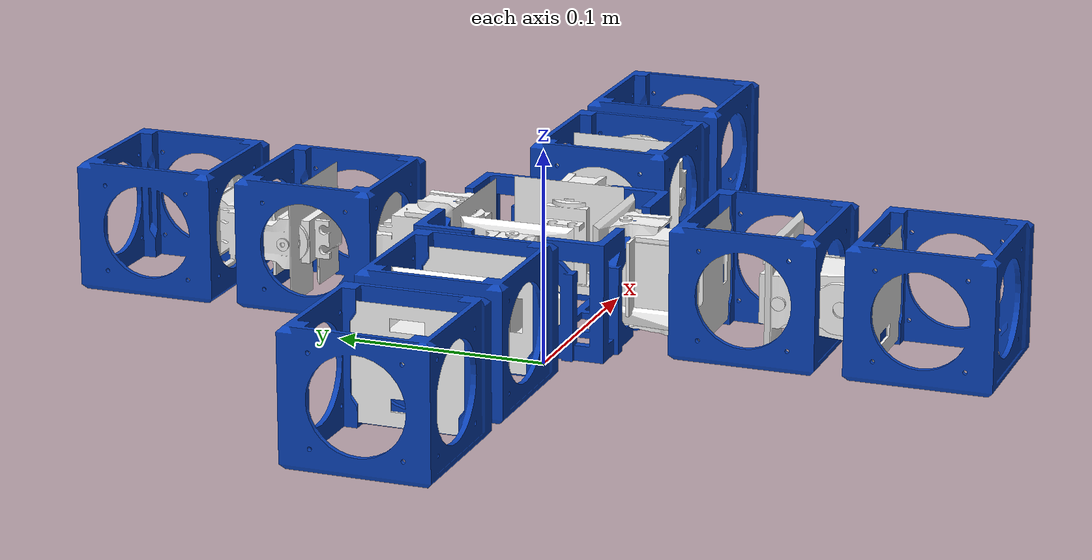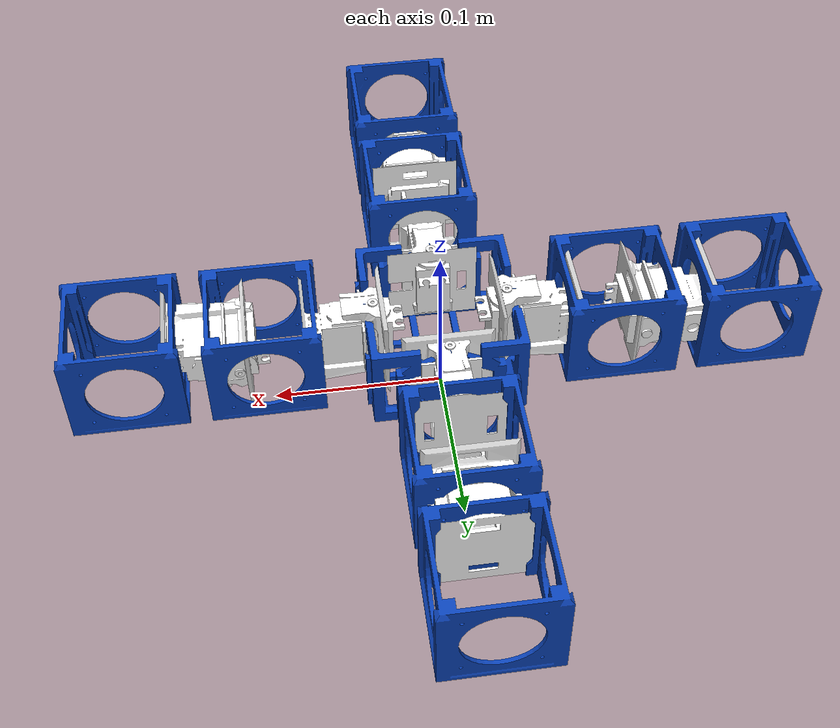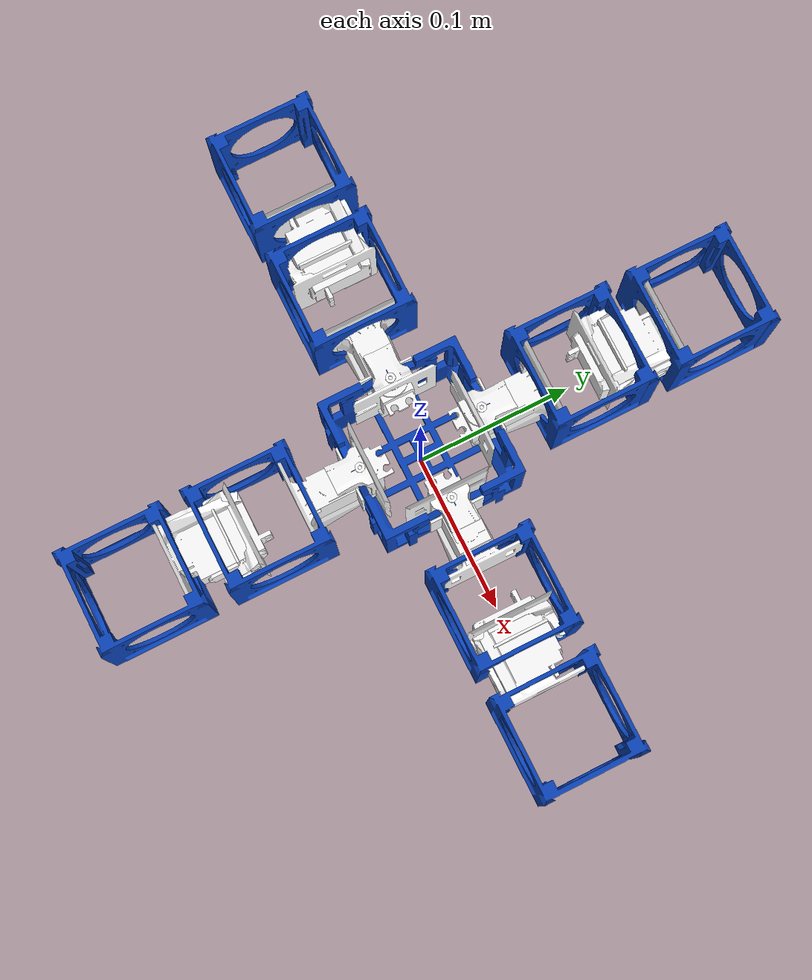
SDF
<sdf version="1.5">
 <model name="spider">
  <pose>0.000000e+00 0.000000e+00 5.000000e-02 0.000000e+00 -0.000000e+00 0.000000e+00</pose>
  <link name="link_component_Core__box">
   <visual name="component_Core__box_visual">
    <material>
     <ambient>0.04 0.26 0.72 1.0</ambient>
     <diffuse>0.04 0.26 0.72 1.0</diffuse>
     <specular>0.1 0.1 0.1 1.0</specular>
    </material>
    <geometry><mesh><uri>model://rg_robot/meshes/CoreComponent.dae</uri></mesh></geometry>
   </visual>
   <collision name="component_Core__box_collision">
    <surface>
     <contact><ode><kd>3.333333e+06</kd><kp>9.000000e+04</kp></ode></contact>
     <friction>
      <ode><mu>1.000000e+00</mu><mu2>1.000000e+00</mu2><slip1>1.000000e-02</slip1><slip2>1.000000e-02</slip2></ode>
      <bullet><friction>1.000000e+00</friction><friction2>1.000000e+00</friction2></bullet>
     </friction>
    </surface>
    <geometry><box><size>9.000000e-02 9.000000e-02 4.500000e-02</size></box></geometry>
   </collision>
   <sensor name="Core-imu_sensor" type="imu">
    <update_rate>8.000000e+00</update_rate>
    <always_on>1</always_on>
   </sensor>
   <visual name="component_Leg00Joint__root_visual">
    <pose>1.665335e-19 -4.575000e-02 4.163336e-20 1.570796e+00 -5.551115e-17 -1.570796e+00</pose>
    <material>
     <ambient>0.98 0.98 0.98 1.0</ambient>
     <diffuse>0.98 0.98 0.98 1.0</diffuse>
     <specular>0.1 0.1 0.1 1.0</specular>
    </material>
    <geometry><box><size>1.500000e-03 3.400000e-02 3.400000e-02</size></box></geometry>
   </visual>
   <collision name="component_Leg00Joint__root_collision">
    <pose>1.665335e-19 -4.575000e-02 4.163336e-20 1.570796e+00 -5.551115e-17 -1.570796e+00</pose>
    <surface>
     <contact><ode><kd>3.333333e+06</kd><kp>9.000000e+04</kp></ode></contact>
     <friction>
      <ode><mu>1.000000e+00</mu><mu2>1.000000e+00</mu2><slip1>1.000000e-02</slip1><slip2>1.000000e-02</slip2></ode>
      <bullet><friction>1.000000e+00</friction><friction2>1.000000e+00</friction2></bullet>
     </friction>
    </surface>
    <geometry><box><size>1.500000e-03 3.400000e-02 3.400000e-02</size></box></geometry>
   </collision>
   <visual name="component_Leg00Joint__frame_frame_visual">
    <pose>2.353673e-18 -5.560000e-02 5.884182e-19 1.570796e+00 -5.551115e-17 -1.570796e+00</pose>
    <material>
     <ambient>0.98 0.98 0.98 1.0</ambient>
     <diffuse>0.98 0.98 0.98 1.0</diffuse>
     <specular>0.1 0.1 0.1 1.0</specular>
    </material>
    <geometry><mesh><uri>model://rg_robot/meshes/ActiveHinge_Frame.dae</uri></mesh></geometry>
   </visual>
   <collision name="component_Leg00Joint__frame_collision">
    <pose>2.353673e-18 -5.560000e-02 5.884182e-19 1.570796e+00 -5.551115e-17 -1.570796e+00</pose>
    <surface>
     <contact><ode><kd>3.333333e+06</kd><kp>9.000000e+04</kp></ode></contact>
     <friction>
      <ode><mu>1.000000e+00</mu><mu2>1.000000e+00</mu2><slip1>1.000000e-02</slip1><slip2>1.000000e-02</slip2></ode>
      <bullet><friction>1.000000e+00</friction><friction2>1.000000e+00</friction2></bullet>
     </friction>
    </surface>
    <geometry><box><size>1.800000e-02 3.400000e-02 1.000000e-02</size></box></geometry>
   </collision>
   <visual name="component_Leg10Joint__root_visual">
    <pose>1.665335e-19 4.575000e-02 -4.163336e-20 1.570796e+00 5.551115e-17 1.570796e+00</pose>
    <material>
     <ambient>0.98 0.98 0.98 1.0</ambient>
     <diffuse>0.98 0.98 0.98 1.0</diffuse>
     <specular>0.1 0.1 0.1 1.0</specular>
    </material>
    <geometry><box><size>1.500000e-03 3.400000e-02 3.400000e-02</size></box></geometry>
   </visual>
   <collision name="component_Leg10Joint__root_collision">
    <pose>1.665335e-19 4.575000e-02 -4.163336e-20 1.570796e+00 5.551115e-17 1.570796e+00</pose>
    <surface>
     <contact><ode><kd>3.333333e+06</kd><kp>9.000000e+04</kp></ode></contact>
     <friction>
      <ode><mu>1.000000e+00</mu><mu2>1.000000e+00</mu2><slip1>1.000000e-02</slip1><slip2>1.000000e-02</slip2></ode>
      <bullet><friction>1.000000e+00</friction><friction2>1.000000e+00</friction2></bullet>
     </friction>
    </surface>
    <geometry><box><size>1.500000e-03 3.400000e-02 3.400000e-02</size></box></geometry>
   </collision>
   <visual name="component_Leg10Joint__frame_frame_visual">
    <pose>2.353673e-18 5.560000e-02 -5.884182e-19 1.570796e+00 5.551115e-17 1.570796e+00</pose>
    <material>
     <ambient>0.98 0.98 0.98 1.0</ambient>
     <diffuse>0.98 0.98 0.98 1.0</diffuse>
     <specular>0.1 0.1 0.1 1.0</specular>
    </material>
    <geometry><mesh><uri>model://rg_robot/meshes/ActiveHinge_Frame.dae</uri></mesh></geometry>
   </visual>
   <collision name="component_Leg10Joint__frame_collision">
    <pose>2.353673e-18 5.560000e-02 -5.884182e-19 1.570796e+00 5.551115e-17 1.570796e+00</pose>
    <surface>
     <contact><ode><kd>3.333333e+06</kd><kp>9.000000e+04</kp></ode></contact>
     <friction>
      <ode><mu>1.000000e+00</mu><mu2>1.000000e+00</mu2><slip1>1.000000e-02</slip1><slip2>1.000000e-02</slip2></ode>
      <bullet><friction>1.000000e+00</friction><friction2>1.000000e+00</friction2></bullet>
     </friction>
    </surface>
    <geometry><box><size>1.800000e-02 3.400000e-02 1.000000e-02</size></box></geometry>
   </collision>
   <visual name="component_Leg20Joint__root_visual">
    <pose>4.575000e-02 0.000000e+00 0.000000e+00 1.570796e+00 -0.000000e+00 0.000000e+00</pose>
    <material>
     <ambient>0.98 0.98 0.98 1.0</ambient>
     <diffuse>0.98 0.98 0.98 1.0</diffuse>
     <specular>0.1 0.1 0.1 1.0</specular>
    </material>
    <geometry><box><size>1.500000e-03 3.400000e-02 3.400000e-02</size></box></geometry>
   </visual>
   <collision name="component_Leg20Joint__root_collision">
    <pose>4.575000e-02 0.000000e+00 0.000000e+00 1.570796e+00 -0.000000e+00 0.000000e+00</pose>
    <surface>
     <contact><ode><kd>3.333333e+06</kd><kp>9.000000e+04</kp></ode></contact>
     <friction>
      <ode><mu>1.000000e+00</mu><mu2>1.000000e+00</mu2><slip1>1.000000e-02</slip1><slip2>1.000000e-02</slip2></ode>
      <bullet><friction>1.000000e+00</friction><friction2>1.000000e+00</friction2></bullet>
     </friction>
    </surface>
    <geometry><box><size>1.500000e-03 3.400000e-02 3.400000e-02</size></box></geometry>
   </collision>
   <visual name="component_Leg20Joint__frame_frame_visual">
    <pose>5.560000e-02 0.000000e+00 0.000000e+00 1.570796e+00 -0.000000e+00 0.000000e+00</pose>
    <material>
     <ambient>0.98 0.98 0.98 1.0</ambient>
     <diffuse>0.98 0.98 0.98 1.0</diffuse>
     <specular>0.1 0.1 0.1 1.0</specular>
    </material>
    <geometry><mesh><uri>model://rg_robot/meshes/ActiveHinge_Frame.dae</uri></mesh></geometry>
   </visual>
   <collision name="component_Leg20Joint__frame_collision">
    <pose>5.560000e-02 0.000000e+00 0.000000e+00 1.570796e+00 -0.000000e+00 0.000000e+00</pose>
    <surface>
     <contact><ode><kd>3.333333e+06</kd><kp>9.000000e+04</kp></ode></contact>
     <friction>
      <ode><mu>1.000000e+00</mu><mu2>1.000000e+00</mu2><slip1>1.000000e-02</slip1><slip2>1.000000e-02</slip2></ode>
      <bullet><friction>1.000000e+00</friction><friction2>1.000000e+00</friction2></bullet>
     </friction>
    </surface>
    <geometry><box><size>1.800000e-02 3.400000e-02 1.000000e-02</size></box></geometry>
   </collision>
   <visual name="component_Leg30Joint__root_visual">
    <pose>-4.575000e-02 0.000000e+00 0.000000e+00 1.570796e+00 -0.000000e+00 3.141593e+00</pose>
    <material>
     <ambient>0.98 0.98 0.98 1.0</ambient>
     <diffuse>0.98 0.98 0.98 1.0</diffuse>
     <specular>0.1 0.1 0.1 1.0</specular>
    </material>
    <geometry><box><size>1.500000e-03 3.400000e-02 3.400000e-02</size></box></geometry>
   </visual>
   <collision name="component_Leg30Joint__root_collision">
    <pose>-4.575000e-02 0.000000e+00 0.000000e+00 1.570796e+00 -0.000000e+00 3.141593e+00</pose>
    <surface>
     <contact><ode><kd>3.333333e+06</kd><kp>9.000000e+04</kp></ode></contact>
     <friction>
      <ode><mu>1.000000e+00</mu><mu2>1.000000e+00</mu2><slip1>1.000000e-02</slip1><slip2>1.000000e-02</slip2></ode>
      <bullet><friction>1.000000e+00</friction><friction2>1.000000e+00</friction2></bullet>
     </friction>
    </surface>
    <geometry><box><size>1.500000e-03 3.400000e-02 3.400000e-02</size></box></geometry>
   </collision>
   <visual name="component_Leg30Joint__frame_frame_visual">
    <pose>-5.560000e-02 0.000000e+00 0.000000e+00 1.570796e+00 -0.000000e+00 3.141593e+00</pose>
    <material>
     <ambient>0.98 0.98 0.98 1.0</ambient>
     <diffuse>0.98 0.98 0.98 1.0</diffuse>
     <specular>0.1 0.1 0.1 1.0</specular>
    </material>
    <geometry><mesh><uri>model://rg_robot/meshes/ActiveHinge_Frame.dae</uri></mesh></geometry>
   </visual>
   <collision name="component_Leg30Joint__frame_collision">
    <pose>-5.560000e-02 0.000000e+00 0.000000e+00 1.570796e+00 -0.000000e+00 3.141593e+00</pose>
    <surface>
     <contact><ode><kd>3.333333e+06</kd><kp>9.000000e+04</kp></ode></contact>
     <friction>
      <ode><mu>1.000000e+00</mu><mu2>1.000000e+00</mu2><slip1>1.000000e-02</slip1><slip2>1.000000e-02</slip2></ode>
      <bullet><friction>1.000000e+00</friction><friction2>1.000000e+00</friction2></bullet>
     </friction>
    </surface>
    <geometry><box><size>1.800000e-02 3.400000e-02 1.000000e-02</size></box></geometry>
   </collision>
   <inertial>
    <mass>1.228000e-01</mass>
    <inertia>
     <ixx>1.172555e-04</ixx>
     <ixy>0.000000e+00</ixy>
     <ixz>-1.763242e-38</ixz>
     <iyy>1.172555e-04</iyy>
     <iyz>4.198228e-22</iyz>
     <izz>1.978165e-04</izz>
    </inertia>
   </inertial>
   <self_collide>True</self_collide>
  </link>
  <link name="link_component_Leg00Joint__servo">
   <pose>1.638200e-17 -9.529797e-02 7.873596e-20 0.000000e+00 -0.000000e+00 0.000000e+00</pose>
   <visual name="component_Leg00Joint__servo_servo_visual">
    <pose>-1.108624e-17 2.644797e-02 1.245205e-18 1.570796e+00 -5.551115e-17 -1.570796e+00</pose>
    <material>
     <ambient>0.98 0.98 0.98 1.0</ambient>
     <diffuse>0.98 0.98 0.98 1.0</diffuse>
     <specular>0.1 0.1 0.1 1.0</specular>
    </material>
    <geometry><mesh><uri>model://rg_robot/meshes/ActiveCardanHinge_Servo_Holder.dae</uri></mesh></geometry>
   </visual>
   <collision name="component_Leg00Joint__servo_collision">
    <pose>-1.108624e-17 2.644797e-02 1.245205e-18 1.570796e+00 -5.551115e-17 -1.570796e+00</pose>
    <surface>
     <contact><ode><kd>3.333333e+06</kd><kp>9.000000e+04</kp></ode></contact>
     <friction>
      <ode><mu>1.000000e+00</mu><mu2>1.000000e+00</mu2><slip1>1.000000e-02</slip1><slip2>1.000000e-02</slip2></ode>
      <bullet><friction>1.000000e+00</friction><friction2>1.000000e+00</friction2></bullet>
     </friction>
    </surface>
    <geometry><box><size>2.450000e-02 3.400000e-02 1.000000e-02</size></box></geometry>
   </collision>
   <collision name="component_Leg00Joint__tail_collision">
    <pose>-8.177453e-18 1.334797e-02 1.972401e-18 1.570796e+00 -5.551115e-17 -1.570796e+00</pose>
    <surface>
     <contact><ode><kd>3.333333e+06</kd><kp>9.000000e+04</kp></ode></contact>
     <friction>
      <ode><mu>1.000000e+00</mu><mu2>1.000000e+00</mu2><slip1>1.000000e-02</slip1><slip2>1.000000e-02</slip2></ode>
      <bullet><friction>1.000000e+00</friction><friction2>1.000000e+00</friction2></bullet>
     </friction>
    </surface>
    <geometry><box><size>1.500000e-03 3.400000e-02 3.400000e-02</size></box></geometry>
   </collision>
   <visual name="component_Leg00__box_visual">
    <pose>6.530768e-18 -7.902035e-03 -3.481570e-18 2.220446e-16 -2.835742e-16 -3.141593e+00</pose>
    <material>
     <ambient>0.04 0.26 0.72 1.0</ambient>
     <diffuse>0.04 0.26 0.72 1.0</diffuse>
     <specular>0.1 0.1 0.1 1.0</specular>
    </material>
    <geometry><mesh><uri>model://rg_robot/meshes/FixedBrick.dae</uri></mesh></geometry>
   </visual>
   <collision name="component_Leg00__box_collision">
    <pose>6.530768e-18 -7.902035e-03 -3.481570e-18 2.220446e-16 -2.835742e-16 -3.141593e+00</pose>
    <surface>
     <contact><ode><kd>3.333333e+06</kd><kp>9.000000e+04</kp></ode></contact>
     <friction>
      <ode><mu>1.000000e+00</mu><mu2>1.000000e+00</mu2><slip1>1.000000e-02</slip1><slip2>1.000000e-02</slip2></ode>
      <bullet><friction>1.000000e+00</friction><friction2>1.000000e+00</friction2></bullet>
     </friction>
    </surface>
    <geometry><box><size>-1.000000e+00 1.000000e+00 3.550000e-02</size></box></geometry>
   </collision>
   <visual name="component_Leg01Joint__root_visual">
    <pose>1.102494e-17 -2.915203e-02 1.142195e-18 -4.098187e-16 -9.580016e-17 -1.570796e+00</pose>
    <material>
     <ambient>0.98 0.98 0.98 1.0</ambient>
     <diffuse>0.98 0.98 0.98 1.0</diffuse>
     <specular>0.1 0.1 0.1 1.0</specular>
    </material>
    <geometry><box><size>1.500000e-03 3.400000e-02 3.400000e-02</size></box></geometry>
   </visual>
   <collision name="component_Leg01Joint__root_collision">
    <pose>1.102494e-17 -2.915203e-02 1.142195e-18 -4.098187e-16 -9.580016e-17 -1.570796e+00</pose>
    <surface>
     <contact><ode><kd>3.333333e+06</kd><kp>9.000000e+04</kp></ode></contact>
     <friction>
      <ode><mu>1.000000e+00</mu><mu2>1.000000e+00</mu2><slip1>1.000000e-02</slip1><slip2>1.000000e-02</slip2></ode>
      <bullet><friction>1.000000e+00</friction><friction2>1.000000e+00</friction2></bullet>
     </friction>
    </surface>
    <geometry><box><size>1.500000e-03 3.400000e-02 3.400000e-02</size></box></geometry>
   </collision>
   <visual name="component_Leg01Joint__frame_frame_visual">
    <pose>1.102494e-17 -3.900203e-02 2.085827e-18 -4.098187e-16 -9.580016e-17 -1.570796e+00</pose>
    <material>
     <ambient>0.98 0.98 0.98 1.0</ambient>
     <diffuse>0.98 0.98 0.98 1.0</diffuse>
     <specular>0.1 0.1 0.1 1.0</specular>
    </material>
    <geometry><mesh><uri>model://rg_robot/meshes/ActiveHinge_Frame.dae</uri></mesh></geometry>
   </visual>
   <collision name="component_Leg01Joint__frame_collision">
    <pose>1.102494e-17 -3.900203e-02 2.085827e-18 -4.098187e-16 -9.580016e-17 -1.570796e+00</pose>
    <surface>
     <contact><ode><kd>3.333333e+06</kd><kp>9.000000e+04</kp></ode></contact>
     <friction>
      <ode><mu>1.000000e+00</mu><mu2>1.000000e+00</mu2><slip1>1.000000e-02</slip1><slip2>1.000000e-02</slip2></ode>
      <bullet><friction>1.000000e+00</friction><friction2>1.000000e+00</friction2></bullet>
     </friction>
    </surface>
    <geometry><box><size>1.800000e-02 3.400000e-02 1.000000e-02</size></box></geometry>
   </collision>
   <inertial>
    <mass>3.440000e-02</mass>
    <inertia>
     <ixx>8.697359e-04</ixx>
     <ixy>6.075862e-21</ixy>
     <ixz>2.401805e-19</ixz>
     <iyy>8.548361e-04</iyy>
     <iyz>1.882799e-19</iyz>
     <izz>1.717978e-03</izz>
    </inertia>
   </inertial>
   <self_collide>True</self_collide>
  </link>
  <link name="link_component_Leg01Joint__servo">
   <pose>2.763933e-17 -1.644229e-01 6.057888e-18 0.000000e+00 -0.000000e+00 0.000000e+00</pose>
   <visual name="component_Leg01Joint__servo_servo_visual">
    <pose>-2.323958e-19 1.687290e-02 -2.623973e-18 -4.098187e-16 -9.580016e-17 -1.570796e+00</pose>
    <material>
     <ambient>0.98 0.98 0.98 1.0</ambient>
     <diffuse>0.98 0.98 0.98 1.0</diffuse>
     <specular>0.1 0.1 0.1 1.0</specular>
    </material>
    <geometry><mesh><uri>model://rg_robot/meshes/ActiveCardanHinge_Servo_Holder.dae</uri></mesh></geometry>
   </visual>
   <collision name="component_Leg01Joint__servo_collision">
    <pose>-2.323958e-19 1.687290e-02 -2.623973e-18 -4.098187e-16 -9.580016e-17 -1.570796e+00</pose>
    <surface>
     <contact><ode><kd>3.333333e+06</kd><kp>9.000000e+04</kp></ode></contact>
     <friction>
      <ode><mu>1.000000e+00</mu><mu2>1.000000e+00</mu2><slip1>1.000000e-02</slip1><slip2>1.000000e-02</slip2></ode>
      <bullet><friction>1.000000e+00</friction><friction2>1.000000e+00</friction2></bullet>
     </friction>
    </surface>
    <geometry><box><size>2.450000e-02 3.400000e-02 1.000000e-02</size></box></geometry>
   </collision>
   <collision name="component_Leg01Joint__tail_collision">
    <pose>-2.323958e-19 3.772901e-03 -1.368991e-18 -4.098187e-16 -9.580016e-17 -1.570796e+00</pose>
    <surface>
     <contact><ode><kd>3.333333e+06</kd><kp>9.000000e+04</kp></ode></contact>
     <friction>
      <ode><mu>1.000000e+00</mu><mu2>1.000000e+00</mu2><slip1>1.000000e-02</slip1><slip2>1.000000e-02</slip2></ode>
      <bullet><friction>1.000000e+00</friction><friction2>1.000000e+00</friction2></bullet>
     </friction>
    </surface>
    <geometry><box><size>1.500000e-03 3.400000e-02 3.400000e-02</size></box></geometry>
   </collision>
   <visual name="component_Leg01__box_visual">
    <pose>3.645424e-19 -1.747710e-02 3.254774e-18 2.220446e-16 -4.098187e-16 -3.141593e+00</pose>
    <material>
     <ambient>0.04 0.26 0.72 1.0</ambient>
     <diffuse>0.04 0.26 0.72 1.0</diffuse>
     <specular>0.1 0.1 0.1 1.0</specular>
    </material>
    <geometry><mesh><uri>model://rg_robot/meshes/FixedBrick.dae</uri></mesh></geometry>
   </visual>
   <collision name="component_Leg01__box_collision">
    <pose>3.645424e-19 -1.747710e-02 3.254774e-18 2.220446e-16 -4.098187e-16 -3.141593e+00</pose>
    <surface>
     <contact><ode><kd>3.333333e+06</kd><kp>9.000000e+04</kp></ode></contact>
     <friction>
      <ode><mu>1.000000e+00</mu><mu2>1.000000e+00</mu2><slip1>1.000000e-02</slip1><slip2>1.000000e-02</slip2></ode>
      <bullet><friction>1.000000e+00</friction><friction2>1.000000e+00</friction2></bullet>
     </friction>
    </surface>
    <geometry><box><size>0.000000e+00 0.000000e+00 3.550000e-02</size></box></geometry>
   </collision>
   <inertial>
    <mass>2.620000e-02</mass>
    <inertia>
     <ixx>8.049522e-06</ixx>
     <ixy>1.064140e-22</ixy>
     <ixz>-1.144265e-22</ixz>
     <iyy>3.361879e-06</iyy>
     <iyz>7.484492e-22</iyz>
     <izz>7.770310e-06</izz>
    </inertia>
   </inertial>
   <self_collide>True</self_collide>
  </link>
  <joint name="joint_link_component_Leg01Joint__servo_link_component_Leg00Joint__servo" type="revolute">
   <pose>1.102494e-17 -4.400203e-02 2.564827e-18 -4.098187e-16 -9.580016e-17 -1.570796e+00</pose>
   <parent>link_component_Leg01Joint__servo</parent>
   <child>link_component_Leg00Joint__servo</child>
   <axis>
    <xyz>0.000000e+00 1.000000e+00 0.000000e+00</xyz>
    <use_parent_model_frame>0</use_parent_model_frame>
    <limit>
     <lower>-7.853982e-01</lower>
     <upper>7.853982e-01</upper>
     <effort>1.765800e-01</effort>
     <velocity>5.235988e+00</velocity>
    </limit>
   </axis>
  </joint>
  <joint name="joint_link_component_Leg00Joint__servo_link_component_Core__box" type="revolute">
   <pose>3.463896e-18 -6.060000e-02 8.659740e-19 1.570796e+00 -5.551115e-17 -1.570796e+00</pose>
   <parent>link_component_Leg00Joint__servo</parent>
   <child>link_component_Core__box</child>
   <axis>
    <xyz>0.000000e+00 1.000000e+00 0.000000e+00</xyz>
    <use_parent_model_frame>0</use_parent_model_frame>
    <limit>
     <lower>-7.853982e-01</lower>
     <upper>7.853982e-01</upper>
     <effort>1.765800e-01</effort>
     <velocity>5.235988e+00</velocity>
    </limit>
   </axis>
  </joint>
  <link name="link_component_Leg10Joint__servo">
   <pose>1.665864e-17 9.529797e-02 7.085631e-18 0.000000e+00 -0.000000e+00 0.000000e+00</pose>
   <visual name="component_Leg10Joint__servo_servo_visual">
    <pose>-1.136287e-17 -2.644797e-02 -8.409571e-18 1.570796e+00 5.551115e-17 1.570796e+00</pose>
    <material>
     <ambient>0.98 0.98 0.98 1.0</ambient>
     <diffuse>0.98 0.98 0.98 1.0</diffuse>
     <specular>0.1 0.1 0.1 1.0</specular>
    </material>
    <geometry><mesh><uri>model://rg_robot/meshes/ActiveCardanHinge_Servo_Holder.dae</uri></mesh></geometry>
   </visual>
   <collision name="component_Leg10Joint__servo_collision">
    <pose>-1.136287e-17 -2.644797e-02 -8.409571e-18 1.570796e+00 5.551115e-17 1.570796e+00</pose>
    <surface>
     <contact><ode><kd>3.333333e+06</kd><kp>9.000000e+04</kp></ode></contact>
     <friction>
      <ode><mu>1.000000e+00</mu><mu2>1.000000e+00</mu2><slip1>1.000000e-02</slip1><slip2>1.000000e-02</slip2></ode>
      <bullet><friction>1.000000e+00</friction><friction2>1.000000e+00</friction2></bullet>
     </friction>
    </surface>
    <geometry><box><size>2.450000e-02 3.400000e-02 1.000000e-02</size></box></geometry>
   </collision>
   <collision name="component_Leg10Joint__tail_collision">
    <pose>-8.454090e-18 -1.334797e-02 -9.136768e-18 1.570796e+00 5.551115e-17 1.570796e+00</pose>
    <surface>
     <contact><ode><kd>3.333333e+06</kd><kp>9.000000e+04</kp></ode></contact>
     <friction>
      <ode><mu>1.000000e+00</mu><mu2>1.000000e+00</mu2><slip1>1.000000e-02</slip1><slip2>1.000000e-02</slip2></ode>
      <bullet><friction>1.000000e+00</friction><friction2>1.000000e+00</friction2></bullet>
     </friction>
    </surface>
    <geometry><box><size>1.500000e-03 3.400000e-02 3.400000e-02</size></box></geometry>
   </collision>
   <visual name="component_Leg10__box_visual">
    <pose>6.311876e-18 7.902035e-03 5.305540e-18 2.164109e-16 -2.220446e-16 -2.220446e-16</pose>
    <material>
     <ambient>0.04 0.26 0.72 1.0</ambient>
     <diffuse>0.04 0.26 0.72 1.0</diffuse>
     <specular>0.1 0.1 0.1 1.0</specular>
    </material>
    <geometry><mesh><uri>model://rg_robot/meshes/FixedBrick.dae</uri></mesh></geometry>
   </visual>
   <collision name="component_Leg10__box_collision">
    <pose>6.311876e-18 7.902035e-03 5.305540e-18 2.164109e-16 -2.220446e-16 -2.220446e-16</pose>
    <surface>
     <contact><ode><kd>3.333333e+06</kd><kp>9.000000e+04</kp></ode></contact>
     <friction>
      <ode><mu>1.000000e+00</mu><mu2>1.000000e+00</mu2><slip1>1.000000e-02</slip1><slip2>1.000000e-02</slip2></ode>
      <bullet><friction>1.000000e+00</friction><friction2>1.000000e+00</friction2></bullet>
     </friction>
    </surface>
    <geometry><box><size>1.000000e+00 1.000000e+00 3.550000e-02</size></box></geometry>
   </collision>
   <visual name="component_Leg11Joint__root_visual">
    <pose>1.119686e-17 2.915203e-02 9.977477e-18 -3.140185e-16 -3.140185e-16 1.570796e+00</pose>
    <material>
     <ambient>0.98 0.98 0.98 1.0</ambient>
     <diffuse>0.98 0.98 0.98 1.0</diffuse>
     <specular>0.1 0.1 0.1 1.0</specular>
    </material>
    <geometry><box><size>1.500000e-03 3.400000e-02 3.400000e-02</size></box></geometry>
   </visual>
   <collision name="component_Leg11Joint__root_collision">
    <pose>1.119686e-17 2.915203e-02 9.977477e-18 -3.140185e-16 -3.140185e-16 1.570796e+00</pose>
    <surface>
     <contact><ode><kd>3.333333e+06</kd><kp>9.000000e+04</kp></ode></contact>
     <friction>
      <ode><mu>1.000000e+00</mu><mu2>1.000000e+00</mu2><slip1>1.000000e-02</slip1><slip2>1.000000e-02</slip2></ode>
      <bullet><friction>1.000000e+00</friction><friction2>1.000000e+00</friction2></bullet>
     </friction>
    </surface>
    <geometry><box><size>1.500000e-03 3.400000e-02 3.400000e-02</size></box></geometry>
   </collision>
   <visual name="component_Leg11Joint__frame_frame_visual">
    <pose>1.557114e-17 3.900203e-02 1.307056e-17 -3.140185e-16 -3.140185e-16 1.570796e+00</pose>
    <material>
     <ambient>0.98 0.98 0.98 1.0</ambient>
     <diffuse>0.98 0.98 0.98 1.0</diffuse>
     <specular>0.1 0.1 0.1 1.0</specular>
    </material>
    <geometry><mesh><uri>model://rg_robot/meshes/ActiveHinge_Frame.dae</uri></mesh></geometry>
   </visual>
   <collision name="component_Leg11Joint__frame_collision">
    <pose>1.557114e-17 3.900203e-02 1.307056e-17 -3.140185e-16 -3.140185e-16 1.570796e+00</pose>
    <surface>
     <contact><ode><kd>3.333333e+06</kd><kp>9.000000e+04</kp></ode></contact>
     <friction>
      <ode><mu>1.000000e+00</mu><mu2>1.000000e+00</mu2><slip1>1.000000e-02</slip1><slip2>1.000000e-02</slip2></ode>
      <bullet><friction>1.000000e+00</friction><friction2>1.000000e+00</friction2></bullet>
     </friction>
    </surface>
    <geometry><box><size>1.800000e-02 3.400000e-02 1.000000e-02</size></box></geometry>
   </collision>
   <inertial>
    <mass>3.440000e-02</mass>
    <inertia>
     <ixx>8.697359e-04</ixx>
     <ixy>-6.061942e-21</ixy>
     <ixz>-1.879361e-19</ixz>
     <iyy>8.548361e-04</iyy>
     <iyz>-1.891712e-19</iyz>
     <izz>1.717978e-03</izz>
    </inertia>
   </inertial>
   <self_collide>True</self_collide>
  </link>
  <link name="link_component_Leg11Joint__servo">
   <pose>4.582202e-17 1.644229e-01 2.961534e-17 0.000000e+00 -0.000000e+00 0.000000e+00</pose>
   <visual name="component_Leg11Joint__servo_servo_visual">
    <pose>-7.708067e-18 -1.687290e-02 -5.298403e-18 -3.140185e-16 -3.140185e-16 1.570796e+00</pose>
    <material>
     <ambient>0.98 0.98 0.98 1.0</ambient>
     <diffuse>0.98 0.98 0.98 1.0</diffuse>
     <specular>0.1 0.1 0.1 1.0</specular>
    </material>
    <geometry><mesh><uri>model://rg_robot/meshes/ActiveCardanHinge_Servo_Holder.dae</uri></mesh></geometry>
   </visual>
   <collision name="component_Leg11Joint__servo_collision">
    <pose>-7.708067e-18 -1.687290e-02 -5.298403e-18 -3.140185e-16 -3.140185e-16 1.570796e+00</pose>
    <surface>
     <contact><ode><kd>3.333333e+06</kd><kp>9.000000e+04</kp></ode></contact>
     <friction>
      <ode><mu>1.000000e+00</mu><mu2>1.000000e+00</mu2><slip1>1.000000e-02</slip1><slip2>1.000000e-02</slip2></ode>
      <bullet><friction>1.000000e+00</friction><friction2>1.000000e+00</friction2></bullet>
     </friction>
    </surface>
    <geometry><box><size>2.450000e-02 3.400000e-02 1.000000e-02</size></box></geometry>
   </collision>
   <collision name="component_Leg11Joint__tail_collision">
    <pose>-1.890499e-18 -3.772901e-03 -1.184761e-18 -3.140185e-16 -3.140185e-16 1.570796e+00</pose>
    <surface>
     <contact><ode><kd>3.333333e+06</kd><kp>9.000000e+04</kp></ode></contact>
     <friction>
      <ode><mu>1.000000e+00</mu><mu2>1.000000e+00</mu2><slip1>1.000000e-02</slip1><slip2>1.000000e-02</slip2></ode>
      <bullet><friction>1.000000e+00</friction><friction2>1.000000e+00</friction2></bullet>
     </friction>
    </surface>
    <geometry><box><size>1.500000e-03 3.400000e-02 3.400000e-02</size></box></geometry>
   </collision>
   <visual name="component_Leg11__box_visual">
    <pose>8.098637e-18 1.747710e-02 5.488132e-18 3.140185e-16 -4.440892e-16 -4.710277e-16</pose>
    <material>
     <ambient>0.04 0.26 0.72 1.0</ambient>
     <diffuse>0.04 0.26 0.72 1.0</diffuse>
     <specular>0.1 0.1 0.1 1.0</specular>
    </material>
    <geometry><mesh><uri>model://rg_robot/meshes/FixedBrick.dae</uri></mesh></geometry>
   </visual>
   <collision name="component_Leg11__box_collision">
    <pose>8.098637e-18 1.747710e-02 5.488132e-18 3.140185e-16 -4.440892e-16 -4.710277e-16</pose>
    <surface>
     <contact><ode><kd>3.333333e+06</kd><kp>9.000000e+04</kp></ode></contact>
     <friction>
      <ode><mu>1.000000e+00</mu><mu2>1.000000e+00</mu2><slip1>1.000000e-02</slip1><slip2>1.000000e-02</slip2></ode>
      <bullet><friction>1.000000e+00</friction><friction2>1.000000e+00</friction2></bullet>
     </friction>
    </surface>
    <geometry><box><size>2.000000e+00 0.000000e+00 3.550000e-02</size></box></geometry>
   </collision>
   <inertial>
    <mass>2.620000e-02</mass>
    <inertia>
     <ixx>8.049522e-06</ixx>
     <ixy>1.599314e-18</ixy>
     <ixz>-1.509676e-18</ixz>
     <iyy>3.403362e-03</iyy>
     <iyz>-1.384329e-21</iyz>
     <izz>3.407770e-03</izz>
    </inertia>
   </inertial>
   <self_collide>True</self_collide>
  </link>
  <joint name="joint_link_component_Leg11Joint__servo_link_component_Leg10Joint__servo" type="revolute">
   <pose>1.779158e-17 4.400203e-02 1.464065e-17 -3.140185e-16 -3.140185e-16 1.570796e+00</pose>
   <parent>link_component_Leg11Joint__servo</parent>
   <child>link_component_Leg10Joint__servo</child>
   <axis>
    <xyz>0.000000e+00 1.000000e+00 0.000000e+00</xyz>
    <use_parent_model_frame>0</use_parent_model_frame>
    <limit>
     <lower>-7.853982e-01</lower>
     <upper>7.853982e-01</upper>
     <effort>1.765800e-01</effort>
     <velocity>5.235988e+00</velocity>
    </limit>
   </axis>
  </joint>
  <joint name="joint_link_component_Leg10Joint__servo_link_component_Core__box" type="revolute">
   <pose>3.463896e-18 6.060000e-02 -8.659740e-19 1.570796e+00 5.551115e-17 1.570796e+00</pose>
   <parent>link_component_Leg10Joint__servo</parent>
   <child>link_component_Core__box</child>
   <axis>
    <xyz>0.000000e+00 1.000000e+00 0.000000e+00</xyz>
    <use_parent_model_frame>0</use_parent_model_frame>
    <limit>
     <lower>-7.853982e-01</lower>
     <upper>7.853982e-01</upper>
     <effort>1.765800e-01</effort>
     <velocity>5.235988e+00</velocity>
    </limit>
   </axis>
  </joint>
  <link name="link_component_Leg20Joint__servo">
   <pose>9.529797e-02 0.000000e+00 0.000000e+00 0.000000e+00 -0.000000e+00 0.000000e+00</pose>
   <visual name="component_Leg20Joint__servo_servo_visual">
    <pose>-2.644797e-02 0.000000e+00 0.000000e+00 1.570796e+00 -0.000000e+00 0.000000e+00</pose>
    <material>
     <ambient>0.98 0.98 0.98 1.0</ambient>
     <diffuse>0.98 0.98 0.98 1.0</diffuse>
     <specular>0.1 0.1 0.1 1.0</specular>
    </material>
    <geometry><mesh><uri>model://rg_robot/meshes/ActiveCardanHinge_Servo_Holder.dae</uri></mesh></geometry>
   </visual>
   <collision name="component_Leg20Joint__servo_collision">
    <pose>-2.644797e-02 0.000000e+00 0.000000e+00 1.570796e+00 -0.000000e+00 0.000000e+00</pose>
    <surface>
     <contact><ode><kd>3.333333e+06</kd><kp>9.000000e+04</kp></ode></contact>
     <friction>
      <ode><mu>1.000000e+00</mu><mu2>1.000000e+00</mu2><slip1>1.000000e-02</slip1><slip2>1.000000e-02</slip2></ode>
      <bullet><friction>1.000000e+00</friction><friction2>1.000000e+00</friction2></bullet>
     </friction>
    </surface>
    <geometry><box><size>2.450000e-02 3.400000e-02 1.000000e-02</size></box></geometry>
   </collision>
   <collision name="component_Leg20Joint__tail_collision">
    <pose>-1.334797e-02 0.000000e+00 0.000000e+00 1.570796e+00 -0.000000e+00 0.000000e+00</pose>
    <surface>
     <contact><ode><kd>3.333333e+06</kd><kp>9.000000e+04</kp></ode></contact>
     <friction>
      <ode><mu>1.000000e+00</mu><mu2>1.000000e+00</mu2><slip1>1.000000e-02</slip1><slip2>1.000000e-02</slip2></ode>
      <bullet><friction>1.000000e+00</friction><friction2>1.000000e+00</friction2></bullet>
     </friction>
    </surface>
    <geometry><box><size>1.500000e-03 3.400000e-02 3.400000e-02</size></box></geometry>
   </collision>
   <visual name="component_Leg20__box_visual">
    <pose>7.902035e-03 0.000000e+00 0.000000e+00 0.000000e+00 0.000000e+00 -1.570796e+00</pose>
    <material>
     <ambient>0.04 0.26 0.72 1.0</ambient>
     <diffuse>0.04 0.26 0.72 1.0</diffuse>
     <specular>0.1 0.1 0.1 1.0</specular>
    </material>
    <geometry><mesh><uri>model://rg_robot/meshes/FixedBrick.dae</uri></mesh></geometry>
   </visual>
   <collision name="component_Leg20__box_collision">
    <pose>7.902035e-03 0.000000e+00 0.000000e+00 0.000000e+00 0.000000e+00 -1.570796e+00</pose>
    <surface>
     <contact><ode><kd>3.333333e+06</kd><kp>9.000000e+04</kp></ode></contact>
     <friction>
      <ode><mu>1.000000e+00</mu><mu2>1.000000e+00</mu2><slip1>1.000000e-02</slip1><slip2>1.000000e-02</slip2></ode>
      <bullet><friction>1.000000e+00</friction><friction2>1.000000e+00</friction2></bullet>
     </friction>
    </surface>
    <geometry><box><size>0.000000e+00 0.000000e+00 3.550000e-02</size></box></geometry>
   </collision>
   <visual name="component_Leg21Joint__root_visual">
    <pose>2.915203e-02 0.000000e+00 0.000000e+00 0.000000e+00 -0.000000e+00 0.000000e+00</pose>
    <material>
     <ambient>0.98 0.98 0.98 1.0</ambient>
     <diffuse>0.98 0.98 0.98 1.0</diffuse>
     <specular>0.1 0.1 0.1 1.0</specular>
    </material>
    <geometry><box><size>1.500000e-03 3.400000e-02 3.400000e-02</size></box></geometry>
   </visual>
   <collision name="component_Leg21Joint__root_collision">
    <pose>2.915203e-02 0.000000e+00 0.000000e+00 0.000000e+00 -0.000000e+00 0.000000e+00</pose>
    <surface>
     <contact><ode><kd>3.333333e+06</kd><kp>9.000000e+04</kp></ode></contact>
     <friction>
      <ode><mu>1.000000e+00</mu><mu2>1.000000e+00</mu2><slip1>1.000000e-02</slip1><slip2>1.000000e-02</slip2></ode>
      <bullet><friction>1.000000e+00</friction><friction2>1.000000e+00</friction2></bullet>
     </friction>
    </surface>
    <geometry><box><size>1.500000e-03 3.400000e-02 3.400000e-02</size></box></geometry>
   </collision>
   <visual name="component_Leg21Joint__frame_frame_visual">
    <pose>3.900203e-02 0.000000e+00 0.000000e+00 0.000000e+00 -0.000000e+00 0.000000e+00</pose>
    <material>
     <ambient>0.98 0.98 0.98 1.0</ambient>
     <diffuse>0.98 0.98 0.98 1.0</diffuse>
     <specular>0.1 0.1 0.1 1.0</specular>
    </material>
    <geometry><mesh><uri>model://rg_robot/meshes/ActiveHinge_Frame.dae</uri></mesh></geometry>
   </visual>
   <collision name="component_Leg21Joint__frame_collision">
    <pose>3.900203e-02 0.000000e+00 0.000000e+00 0.000000e+00 -0.000000e+00 0.000000e+00</pose>
    <surface>
     <contact><ode><kd>3.333333e+06</kd><kp>9.000000e+04</kp></ode></contact>
     <friction>
      <ode><mu>1.000000e+00</mu><mu2>1.000000e+00</mu2><slip1>1.000000e-02</slip1><slip2>1.000000e-02</slip2></ode>
      <bullet><friction>1.000000e+00</friction><friction2>1.000000e+00</friction2></bullet>
     </friction>
    </surface>
    <geometry><box><size>1.800000e-02 3.400000e-02 1.000000e-02</size></box></geometry>
   </collision>
   <inertial>
    <mass>3.440000e-02</mass>
    <inertia>
     <ixx>4.836146e-06</ixx>
     <ixy>0.000000e+00</ixy>
     <ixz>0.000000e+00</ixz>
     <iyy>1.973591e-05</iyy>
     <iyz>0.000000e+00</iyz>
     <izz>1.797830e-05</izz>
    </inertia>
   </inertial>
   <self_collide>True</self_collide>
  </link>
  <link name="link_component_Leg21Joint__servo">
   <pose>1.644229e-01 0.000000e+00 0.000000e+00 0.000000e+00 -0.000000e+00 0.000000e+00</pose>
   <visual name="component_Leg21Joint__servo_servo_visual">
    <pose>-1.687290e-02 0.000000e+00 0.000000e+00 0.000000e+00 -0.000000e+00 0.000000e+00</pose>
    <material>
     <ambient>0.98 0.98 0.98 1.0</ambient>
     <diffuse>0.98 0.98 0.98 1.0</diffuse>
     <specular>0.1 0.1 0.1 1.0</specular>
    </material>
    <geometry><mesh><uri>model://rg_robot/meshes/ActiveCardanHinge_Servo_Holder.dae</uri></mesh></geometry>
   </visual>
   <collision name="component_Leg21Joint__servo_collision">
    <pose>-1.687290e-02 0.000000e+00 0.000000e+00 0.000000e+00 -0.000000e+00 0.000000e+00</pose>
    <surface>
     <contact><ode><kd>3.333333e+06</kd><kp>9.000000e+04</kp></ode></contact>
     <friction>
      <ode><mu>1.000000e+00</mu><mu2>1.000000e+00</mu2><slip1>1.000000e-02</slip1><slip2>1.000000e-02</slip2></ode>
      <bullet><friction>1.000000e+00</friction><friction2>1.000000e+00</friction2></bullet>
     </friction>
    </surface>
    <geometry><box><size>2.450000e-02 3.400000e-02 1.000000e-02</size></box></geometry>
   </collision>
   <collision name="component_Leg21Joint__tail_collision">
    <pose>-3.772901e-03 0.000000e+00 0.000000e+00 0.000000e+00 -0.000000e+00 0.000000e+00</pose>
    <surface>
     <contact><ode><kd>3.333333e+06</kd><kp>9.000000e+04</kp></ode></contact>
     <friction>
      <ode><mu>1.000000e+00</mu><mu2>1.000000e+00</mu2><slip1>1.000000e-02</slip1><slip2>1.000000e-02</slip2></ode>
      <bullet><friction>1.000000e+00</friction><friction2>1.000000e+00</friction2></bullet>
     </friction>
    </surface>
    <geometry><box><size>1.500000e-03 3.400000e-02 3.400000e-02</size></box></geometry>
   </collision>
   <visual name="component_Leg21__box_visual">
    <pose>1.747710e-02 0.000000e+00 0.000000e+00 0.000000e+00 0.000000e+00 -1.570796e+00</pose>
    <material>
     <ambient>0.04 0.26 0.72 1.0</ambient>
     <diffuse>0.04 0.26 0.72 1.0</diffuse>
     <specular>0.1 0.1 0.1 1.0</specular>
    </material>
    <geometry><mesh><uri>model://rg_robot/meshes/FixedBrick.dae</uri></mesh></geometry>
   </visual>
   <collision name="component_Leg21__box_collision">
    <pose>1.747710e-02 0.000000e+00 0.000000e+00 0.000000e+00 0.000000e+00 -1.570796e+00</pose>
    <surface>
     <contact><ode><kd>3.333333e+06</kd><kp>9.000000e+04</kp></ode></contact>
     <friction>
      <ode><mu>1.000000e+00</mu><mu2>1.000000e+00</mu2><slip1>1.000000e-02</slip1><slip2>1.000000e-02</slip2></ode>
      <bullet><friction>1.000000e+00</friction><friction2>1.000000e+00</friction2></bullet>
     </friction>
    </surface>
    <geometry><box><size>1.000000e+00 -1.000000e+00 3.550000e-02</size></box></geometry>
   </collision>
   <inertial>
    <mass>2.620000e-02</mass>
    <inertia>
     <ixx>8.533619e-04</ixx>
     <ixy>0.000000e+00</ixy>
     <ixz>0.000000e+00</ixz>
     <iyy>8.580495e-04</iyy>
     <iyz>0.000000e+00</iyz>
     <izz>1.707770e-03</izz>
    </inertia>
   </inertial>
   <self_collide>True</self_collide>
  </link>
  <joint name="joint_link_component_Leg21Joint__servo_link_component_Leg20Joint__servo" type="revolute">
   <pose>4.400203e-02 0.000000e+00 0.000000e+00 0.000000e+00 -0.000000e+00 0.000000e+00</pose>
   <parent>link_component_Leg21Joint__servo</parent>
   <child>link_component_Leg20Joint__servo</child>
   <axis>
    <xyz>0.000000e+00 1.000000e+00 0.000000e+00</xyz>
    <use_parent_model_frame>0</use_parent_model_frame>
    <limit>
     <lower>-7.853982e-01</lower>
     <upper>7.853982e-01</upper>
     <effort>1.765800e-01</effort>
     <velocity>5.235988e+00</velocity>
    </limit>
   </axis>
  </joint>
  <joint name="joint_link_component_Leg20Joint__servo_link_component_Core__box" type="revolute">
   <pose>6.060000e-02 0.000000e+00 0.000000e+00 1.570796e+00 -0.000000e+00 0.000000e+00</pose>
   <parent>link_component_Leg20Joint__servo</parent>
   <child>link_component_Core__box</child>
   <axis>
    <xyz>0.000000e+00 1.000000e+00 0.000000e+00</xyz>
    <use_parent_model_frame>0</use_parent_model_frame>
    <limit>
     <lower>-7.853982e-01</lower>
     <upper>7.853982e-01</upper>
     <effort>1.765800e-01</effort>
     <velocity>5.235988e+00</velocity>
    </limit>
   </axis>
  </joint>
  <link name="link_component_Leg30Joint__servo">
   <pose>-9.529797e-02 0.000000e+00 0.000000e+00 0.000000e+00 -0.000000e+00 0.000000e+00</pose>
   <visual name="component_Leg30Joint__servo_servo_visual">
    <pose>2.644797e-02 0.000000e+00 0.000000e+00 1.570796e+00 -0.000000e+00 3.141593e+00</pose>
    <material>
     <ambient>0.98 0.98 0.98 1.0</ambient>
     <diffuse>0.98 0.98 0.98 1.0</diffuse>
     <specular>0.1 0.1 0.1 1.0</specular>
    </material>
    <geometry><mesh><uri>model://rg_robot/meshes/ActiveCardanHinge_Servo_Holder.dae</uri></mesh></geometry>
   </visual>
   <collision name="component_Leg30Joint__servo_collision">
    <pose>2.644797e-02 0.000000e+00 0.000000e+00 1.570796e+00 -0.000000e+00 3.141593e+00</pose>
    <surface>
     <contact><ode><kd>3.333333e+06</kd><kp>9.000000e+04</kp></ode></contact>
     <friction>
      <ode><mu>1.000000e+00</mu><mu2>1.000000e+00</mu2><slip1>1.000000e-02</slip1><slip2>1.000000e-02</slip2></ode>
      <bullet><friction>1.000000e+00</friction><friction2>1.000000e+00</friction2></bullet>
     </friction>
    </surface>
    <geometry><box><size>2.450000e-02 3.400000e-02 1.000000e-02</size></box></geometry>
   </collision>
   <collision name="component_Leg30Joint__tail_collision">
    <pose>1.334797e-02 0.000000e+00 0.000000e+00 1.570796e+00 -0.000000e+00 3.141593e+00</pose>
    <surface>
     <contact><ode><kd>3.333333e+06</kd><kp>9.000000e+04</kp></ode></contact>
     <friction>
      <ode><mu>1.000000e+00</mu><mu2>1.000000e+00</mu2><slip1>1.000000e-02</slip1><slip2>1.000000e-02</slip2></ode>
      <bullet><friction>1.000000e+00</friction><friction2>1.000000e+00</friction2></bullet>
     </friction>
    </surface>
    <geometry><box><size>1.500000e-03 3.400000e-02 3.400000e-02</size></box></geometry>
   </collision>
   <visual name="component_Leg30__box_visual">
    <pose>-7.902035e-03 0.000000e+00 0.000000e+00 0.000000e+00 -0.000000e+00 1.570796e+00</pose>
    <material>
     <ambient>0.04 0.26 0.72 1.0</ambient>
     <diffuse>0.04 0.26 0.72 1.0</diffuse>
     <specular>0.1 0.1 0.1 1.0</specular>
    </material>
    <geometry><mesh><uri>model://rg_robot/meshes/FixedBrick.dae</uri></mesh></geometry>
   </visual>
   <collision name="component_Leg30__box_collision">
    <pose>-7.902035e-03 0.000000e+00 0.000000e+00 0.000000e+00 -0.000000e+00 1.570796e+00</pose>
    <surface>
     <contact><ode><kd>3.333333e+06</kd><kp>9.000000e+04</kp></ode></contact>
     <friction>
      <ode><mu>1.000000e+00</mu><mu2>1.000000e+00</mu2><slip1>1.000000e-02</slip1><slip2>1.000000e-02</slip2></ode>
      <bullet><friction>1.000000e+00</friction><friction2>1.000000e+00</friction2></bullet>
     </friction>
    </surface>
    <geometry><box><size>0.000000e+00 2.000000e+00 3.550000e-02</size></box></geometry>
   </collision>
   <visual name="component_Leg31Joint__root_visual">
    <pose>-2.915203e-02 0.000000e+00 0.000000e+00 0.000000e+00 -0.000000e+00 3.141593e+00</pose>
    <material>
     <ambient>0.98 0.98 0.98 1.0</ambient>
     <diffuse>0.98 0.98 0.98 1.0</diffuse>
     <specular>0.1 0.1 0.1 1.0</specular>
    </material>
    <geometry><box><size>1.500000e-03 3.400000e-02 3.400000e-02</size></box></geometry>
   </visual>
   <collision name="component_Leg31Joint__root_collision">
    <pose>-2.915203e-02 0.000000e+00 0.000000e+00 0.000000e+00 -0.000000e+00 3.141593e+00</pose>
    <surface>
     <contact><ode><kd>3.333333e+06</kd><kp>9.000000e+04</kp></ode></contact>
     <friction>
      <ode><mu>1.000000e+00</mu><mu2>1.000000e+00</mu2><slip1>1.000000e-02</slip1><slip2>1.000000e-02</slip2></ode>
      <bullet><friction>1.000000e+00</friction><friction2>1.000000e+00</friction2></bullet>
     </friction>
    </surface>
    <geometry><box><size>1.500000e-03 3.400000e-02 3.400000e-02</size></box></geometry>
   </collision>
   <visual name="component_Leg31Joint__frame_frame_visual">
    <pose>-3.900203e-02 0.000000e+00 0.000000e+00 0.000000e+00 -0.000000e+00 3.141593e+00</pose>
    <material>
     <ambient>0.98 0.98 0.98 1.0</ambient>
     <diffuse>0.98 0.98 0.98 1.0</diffuse>
     <specular>0.1 0.1 0.1 1.0</specular>
    </material>
    <geometry><mesh><uri>model://rg_robot/meshes/ActiveHinge_Frame.dae</uri></mesh></geometry>
   </visual>
   <collision name="component_Leg31Joint__frame_collision">
    <pose>-3.900203e-02 0.000000e+00 0.000000e+00 0.000000e+00 -0.000000e+00 3.141593e+00</pose>
    <surface>
     <contact><ode><kd>3.333333e+06</kd><kp>9.000000e+04</kp></ode></contact>
     <friction>
      <ode><mu>1.000000e+00</mu><mu2>1.000000e+00</mu2><slip1>1.000000e-02</slip1><slip2>1.000000e-02</slip2></ode>
      <bullet><friction>1.000000e+00</friction><friction2>1.000000e+00</friction2></bullet>
     </friction>
    </surface>
    <geometry><box><size>1.800000e-02 3.400000e-02 1.000000e-02</size></box></geometry>
   </collision>
   <inertial>
    <mass>3.440000e-02</mass>
    <inertia>
     <ixx>4.836146e-06</ixx>
     <ixy>0.000000e+00</ixy>
     <ixz>0.000000e+00</ixz>
     <iyy>3.419736e-03</iyy>
     <iyz>0.000000e+00</iyz>
     <izz>3.417978e-03</izz>
    </inertia>
   </inertial>
   <self_collide>True</self_collide>
  </link>
  <link name="link_component_Leg31Joint__servo">
   <pose>-1.644229e-01 0.000000e+00 0.000000e+00 0.000000e+00 -0.000000e+00 0.000000e+00</pose>
   <visual name="component_Leg31Joint__servo_servo_visual">
    <pose>1.687290e-02 0.000000e+00 0.000000e+00 0.000000e+00 -0.000000e+00 3.141593e+00</pose>
    <material>
     <ambient>0.98 0.98 0.98 1.0</ambient>
     <diffuse>0.98 0.98 0.98 1.0</diffuse>
     <specular>0.1 0.1 0.1 1.0</specular>
    </material>
    <geometry><mesh><uri>model://rg_robot/meshes/ActiveCardanHinge_Servo_Holder.dae</uri></mesh></geometry>
   </visual>
   <collision name="component_Leg31Joint__servo_collision">
    <pose>1.687290e-02 0.000000e+00 0.000000e+00 0.000000e+00 -0.000000e+00 3.141593e+00</pose>
    <surface>
     <contact><ode><kd>3.333333e+06</kd><kp>9.000000e+04</kp></ode></contact>
     <friction>
      <ode><mu>1.000000e+00</mu><mu2>1.000000e+00</mu2><slip1>1.000000e-02</slip1><slip2>1.000000e-02</slip2></ode>
      <bullet><friction>1.000000e+00</friction><friction2>1.000000e+00</friction2></bullet>
     </friction>
    </surface>
    <geometry><box><size>2.450000e-02 3.400000e-02 1.000000e-02</size></box></geometry>
   </collision>
   <collision name="component_Leg31Joint__tail_collision">
    <pose>3.772901e-03 0.000000e+00 0.000000e+00 0.000000e+00 -0.000000e+00 3.141593e+00</pose>
    <surface>
     <contact><ode><kd>3.333333e+06</kd><kp>9.000000e+04</kp></ode></contact>
     <friction>
      <ode><mu>1.000000e+00</mu><mu2>1.000000e+00</mu2><slip1>1.000000e-02</slip1><slip2>1.000000e-02</slip2></ode>
      <bullet><friction>1.000000e+00</friction><friction2>1.000000e+00</friction2></bullet>
     </friction>
    </surface>
    <geometry><box><size>1.500000e-03 3.400000e-02 3.400000e-02</size></box></geometry>
   </collision>
   <visual name="component_Leg31__box_visual">
    <pose>-1.747710e-02 0.000000e+00 0.000000e+00 0.000000e+00 -0.000000e+00 1.570796e+00</pose>
    <material>
     <ambient>0.04 0.26 0.72 1.0</ambient>
     <diffuse>0.04 0.26 0.72 1.0</diffuse>
     <specular>0.1 0.1 0.1 1.0</specular>
    </material>
    <geometry><mesh><uri>model://rg_robot/meshes/FixedBrick.dae</uri></mesh></geometry>
   </visual>
   <collision name="component_Leg31__box_collision">
    <pose>-1.747710e-02 0.000000e+00 0.000000e+00 0.000000e+00 -0.000000e+00 1.570796e+00</pose>
    <surface>
     <contact><ode><kd>3.333333e+06</kd><kp>9.000000e+04</kp></ode></contact>
     <friction>
      <ode><mu>1.000000e+00</mu><mu2>1.000000e+00</mu2><slip1>1.000000e-02</slip1><slip2>1.000000e-02</slip2></ode>
      <bullet><friction>1.000000e+00</friction><friction2>1.000000e+00</friction2></bullet>
     </friction>
    </surface>
    <geometry><box><size>1.000000e+00 1.000000e+00 3.550000e-02</size></box></geometry>
   </collision>
   <inertial>
    <mass>2.620000e-02</mass>
    <inertia>
     <ixx>8.533619e-04</ixx>
     <ixy>0.000000e+00</ixy>
     <ixz>0.000000e+00</ixz>
     <iyy>8.580495e-04</iyy>
     <iyz>0.000000e+00</iyz>
     <izz>1.707770e-03</izz>
    </inertia>
   </inertial>
   <self_collide>True</self_collide>
  </link>
  <joint name="joint_link_component_Leg31Joint__servo_link_component_Leg30Joint__servo" type="revolute">
   <pose>-4.400203e-02 0.000000e+00 0.000000e+00 0.000000e+00 -0.000000e+00 3.141593e+00</pose>
   <parent>link_component_Leg31Joint__servo</parent>
   <child>link_component_Leg30Joint__servo</child>
   <axis>
    <xyz>0.000000e+00 1.000000e+00 0.000000e+00</xyz>
    <use_parent_model_frame>0</use_parent_model_frame>
    <limit>
     <lower>-7.853982e-01</lower>
     <upper>7.853982e-01</upper>
     <effort>1.765800e-01</effort>
     <velocity>5.235988e+00</velocity>
    </limit>
   </axis>
  </joint>
  <joint name="joint_link_component_Leg30Joint__servo_link_component_Core__box" type="revolute">
   <pose>-6.060000e-02 0.000000e+00 0.000000e+00 1.570796e+00 -0.000000e+00 3.141593e+00</pose>
   <parent>link_component_Leg30Joint__servo</parent>
   <child>link_component_Core__box</child>
   <axis>
    <xyz>0.000000e+00 1.000000e+00 0.000000e+00</xyz>
    <use_parent_model_frame>0</use_parent_model_frame>
    <limit>
     <lower>-7.853982e-01</lower>
     <upper>7.853982e-01</upper>
     <effort>1.765800e-01</effort>
     <velocity>5.235988e+00</velocity>
    </limit>
   </axis>
  </joint>
  <plugin name="robot_controller" filename="libRobotControlPlugin.so">
   <robot_config>
    <update_rate>8.000000e+00</update_rate>
    <brain learner="ann" genome="---
body:
  id          : Core
  type        : Core
  params:
    red: 0.04
    green: 0.26
    blue: 0.72
  children    :
    0:
      id          : Leg00Joint
      type        : ActiveHinge
      params:
        red: 0.98
        green: 0.98
        blue: 0.98
      orientation : 90
      children    :
        1:
          id          : Leg00
          type        : FixedBrick
          params:
            red: 0.04
            green: 0.26
            blue: 0.72
          orientation : -90
          children    :
            1:
              id          : Leg01Joint
              type        : ActiveHinge
              params:
                red: 0.98
                green: 0.98
                blue: 0.98
              children    :
                1:
                  id          : Leg01
                  type        : FixedBrick
                  params:
                    red: 0.04
                    green: 0.26
                    blue: 0.72
                  orientation : 0
    1:
      id          : Leg10Joint
      type        : ActiveHinge
      params:
        red: 0.98
        green: 0.98
        blue: 0.98
      orientation : 90
      children    :
        1:
          id          : Leg10
          type        : FixedBrick
          params:
            red: 0.04
            green: 0.26
            blue: 0.72
          orientation : -90
          children    :
            1:
              id          : Leg11Joint
              type        : ActiveHinge
              params:
                red: 0.98
                green: 0.98
                blue: 0.98
              children    :
                1:
                  id          : Leg11
                  type        : FixedBrick
                  params:
                    red: 0.04
                    green: 0.26
                    blue: 0.72
                  orientation : 0
    2:
      id          : Leg20Joint
      type        : ActiveHinge
      params:
        red: 0.98
        green: 0.98
        blue: 0.98
      orientation : 90
      children    :
        1:
          id          : Leg20
          type        : FixedBrick
          params:
            red: 0.04
            green: 0.26
            blue: 0.72
          orientation : -90
          children    :
            1:
              id          : Leg21Joint
              type        : ActiveHinge
              params:
                red: 0.98
                green: 0.98
                blue: 0.98
              children    :
                1:
                  id          : Leg21
                  type        : FixedBrick
                  params:
                    red: 0.04
                    green: 0.26
                    blue: 0.72
                  orientation : 0
    3:
      id          : Leg30Joint
      type        : ActiveHinge
      params:
        red: 0.98
        green: 0.98
        blue: 0.98
      orientation : 90
      children    :
        1:
          id          : Leg30
          type        : FixedBrick
          params:
            red: 0.04
            green: 0.26
            blue: 0.72
          orientation : -90
          children    :
            1:
              id          : Leg31Joint
              type        : ActiveHinge
              params:
                red: 0.98
                green: 0.98
                blue: 0.98
              children    :
                1:
                  id          : Leg31
                  type        : FixedBrick
                  params:
                    red: 0.04
                    green: 0.26
                    blue: 0.72
                  orientation : 0">
     <neuron layer="input" type="Input" id="Core-in-0" part_id="Core"/>
     <neuron layer="input" type="Input" id="Core-in-1" part_id="Core"/>
     <neuron layer="input" type="Input" id="Core-in-2" part_id="Core"/>
     <neuron layer="input" type="Input" id="Core-in-3" part_id="Core"/>
     <neuron layer="input" type="Input" id="Core-in-4" part_id="Core"/>
     <neuron layer="input" type="Input" id="Core-in-5" part_id="Core"/>
     <neuron layer="output" type="Simple" id="Leg00Joint-out-0" part_id="Leg00Joint">
      <bias>0.000000e+00</bias>
      <gain>5.000000e-01</gain>
     </neuron>
     <neuron layer="output" type="Simple" id="Leg01Joint-out-0" part_id="Leg01Joint">
      <bias>0.000000e+00</bias>
      <gain>5.000000e-01</gain>
     </neuron>
     <neuron layer="output" type="Simple" id="Leg10Joint-out-0" part_id="Leg10Joint">
      <bias>0.000000e+00</bias>
      <gain>5.000000e-01</gain>
     </neuron>
     <neuron layer="output" type="Simple" id="Leg11Joint-out-0" part_id="Leg11Joint">
      <bias>0.000000e+00</bias>
      <gain>5.000000e-01</gain>
     </neuron>
     <neuron layer="output" type="Simple" id="Leg20Joint-out-0" part_id="Leg20Joint">
      <bias>0.000000e+00</bias>
      <gain>5.000000e-01</gain>
     </neuron>
     <neuron layer="output" type="Simple" id="Leg21Joint-out-0" part_id="Leg21Joint">
      <bias>0.000000e+00</bias>
      <gain>5.000000e-01</gain>
     </neuron>
     <neuron layer="output" type="Simple" id="Leg30Joint-out-0" part_id="Leg30Joint">
      <bias>0.000000e+00</bias>
      <gain>5.000000e-01</gain>
     </neuron>
     <neuron layer="output" type="Simple" id="Leg31Joint-out-0" part_id="Leg31Joint">
      <bias>0.000000e+00</bias>
      <gain>5.000000e-01</gain>
     </neuron>
    </brain>
    <sensor link="link_component_Core__box" part_id="Core" type="imu" id="Core__Core-imu_sensor" sensor="Core-imu_sensor"/>
    <motor type="position" part_id="Leg00Joint" id="Leg00Joint__rotate" x="-1" y="-1" joint="joint_link_component_Leg00Joint__servo_link_component_Core__box">
     <pid>
      <p>9.000000e-01</p>
      <i>0.000000e+00</i>
      <d>0.000000e+00</d>
      <i_max>0.000000e+00</i_max>
      <i_min>0.000000e+00</i_min>
     </pid>
    </motor>
    <motor type="position" part_id="Leg01Joint" id="Leg01Joint__rotate" x="-1" y="-1" joint="joint_link_component_Leg01Joint__servo_link_component_Leg00Joint__servo">
     <pid>
      <p>9.000000e-01</p>
      <i>0.000000e+00</i>
      <d>0.000000e+00</d>
      <i_max>0.000000e+00</i_max>
      <i_min>0.000000e+00</i_min>
     </pid>
    </motor>
    <motor type="position" part_id="Leg10Joint" id="Leg10Joint__rotate" x="1" y="1" joint="joint_link_component_Leg10Joint__servo_link_component_Core__box">
     <pid>
      <p>9.000000e-01</p>
      <i>0.000000e+00</i>
      <d>0.000000e+00</d>
      <i_max>0.000000e+00</i_max>
      <i_min>0.000000e+00</i_min>
     </pid>
    </motor>
    <motor type="position" part_id="Leg11Joint" id="Leg11Joint__rotate" x="1" y="1" joint="joint_link_component_Leg11Joint__servo_link_component_Leg10Joint__servo">
     <pid>
      <p>9.000000e-01</p>
      <i>0.000000e+00</i>
      <d>0.000000e+00</d>
      <i_max>0.000000e+00</i_max>
      <i_min>0.000000e+00</i_min>
     </pid>
    </motor>
    <motor type="position" part_id="Leg20Joint" id="Leg20Joint__rotate" x="0" y="0" joint="joint_link_component_Leg20Joint__servo_link_component_Core__box">
     <pid>
      <p>9.000000e-01</p>
      <i>0.000000e+00</i>
      <d>0.000000e+00</d>
      <i_max>0.000000e+00</i_max>
      <i_min>0.000000e+00</i_min>
     </pid>
    </motor>
    <motor type="position" part_id="Leg21Joint" id="Leg21Joint__rotate" x="0" y="0" joint="joint_link_component_Leg21Joint__servo_link_component_Leg20Joint__servo">
     <pid>
      <p>9.000000e-01</p>
      <i>0.000000e+00</i>
      <d>0.000000e+00</d>
      <i_max>0.000000e+00</i_max>
      <i_min>0.000000e+00</i_min>
     </pid>
    </motor>
    <motor type="position" part_id="Leg30Joint" id="Leg30Joint__rotate" x="0" y="0" joint="joint_link_component_Leg30Joint__servo_link_component_Core__box">
     <pid>
      <p>9.000000e-01</p>
      <i>0.000000e+00</i>
      <d>0.000000e+00</d>
      <i_max>0.000000e+00</i_max>
      <i_min>0.000000e+00</i_min>
     </pid>
    </motor>
    <motor type="position" part_id="Leg31Joint" id="Leg31Joint__rotate" x="0" y="0" joint="joint_link_component_Leg31Joint__servo_link_component_Leg30Joint__servo">
     <pid>
      <p>9.000000e-01</p>
      <i>0.000000e+00</i>
      <d>0.000000e+00</d>
      <i_max>0.000000e+00</i_max>
      <i_min>0.000000e+00</i_min>
     </pid>
    </motor>
    <battery><level>0.000000e+00</level></battery>
   </robot_config>
  </plugin>
  <static>0</static>
 </model>
</sdf>
